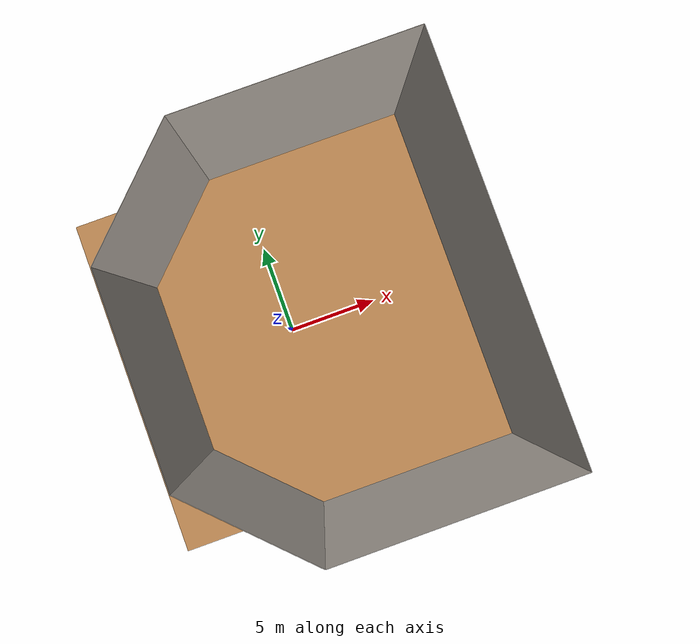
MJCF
<mujoco model="empty_arena">
  <asset>
    <texture builtin="gradient" height="256" rgb1=".9 .9 1." rgb2=".2 .3 .4" type="skybox" width="256"/>
    <texture file="../textures/wood-tiles.png" type="2d" name="texplane"/>
    <material name="floorplane" reflectance="0.01" shininess="0.0" specular="0.0" texrepeat="2 2" texture="texplane" texuniform="true"/>
    <!-- plaster walls -->
    <texture file="../textures/cream-plaster.png" type="2d" name="tex-cream-plaster"/>
    <material name="walls_mat" reflectance="0.0" shininess="0.1" specular="0.1" texrepeat="3 3" texture="tex-cream-plaster" texuniform="true" />

  </asset>
  <worldbody>
    <!-- Floor -->
    <geom condim="3" material="floorplane" name="floor" pos="0 0 0" size="10 10 .125" type="plane"/>
    <!-- Walls (visual only) -->
    <geom pos="-4.166666 7.5 5" quat="0.6532815 0.6532815 0.2705981 0.2705981" size="3.533 5 0.01" type="box" group="1" name="wall_leftcorner" material="walls_mat"/>
    <geom pos="-4.166666 -7.5 5" quat="0.6532815 0.6532815 -0.2705981 -0.2705981" size="3.533 5 0.01" type="box" group="1" name="wall_rightcorner" material="walls_mat"/>
    <geom pos="4.166666 10 5" quat="0.7071 0.7071 0 0" size="5.8333 5 0.01" type="box" name="wall_left" group="1" material="walls_mat"/>
    <geom pos="4.166666 -10 5" quat="0.7071 -0.7071 0 0" size="5.8333 5 0.01" type="box" name="wall_right" group="1" material="walls_mat"/>
    <geom pos="-6.6667 0 5" quat="0.5 0.5 0.5 0.5" size="5 5 0.01" type="box" name="wall_rear" group="1" material="walls_mat"/>
    <geom pos="10 0 5" quat="0.5 0.5 -0.5 -0.5" size="10 5 0.01" type="box"  name="wall_front" group="1" material="walls_mat"/>
    <light diffuse=".8 .8 .8" dir="0 -.15 -1" directional="false" pos="1 1 4.0" specular="0.3 0.3 0.3" castshadow="false"/>
    <light diffuse=".8 .8 .8" dir="0 -.15 -1" directional="false" pos="-3. -3. 4.0" specular="0.3 0.3 0.3" castshadow="false"/>
    <!-- front view -->
    <camera mode="fixed" name="frontview" pos="0 -3 1.5" axisangle="1 0 0 1.308" />
    <!-- bird view -->
    <camera mode="fixed" name="birdview" pos="-0.2 0 3.0" quat="0.7071 0 0 0.7071"/>
    <!-- side view -->
    <camera mode="fixed" name="sideview" pos="-0.05651774593317116 1.2761224129427358 1.4879572214102434" quat="0.009905065491771751 0.006877963156909582 0.5912228352893879 0.806418094001364" />
  </worldbody>
</mujoco>
